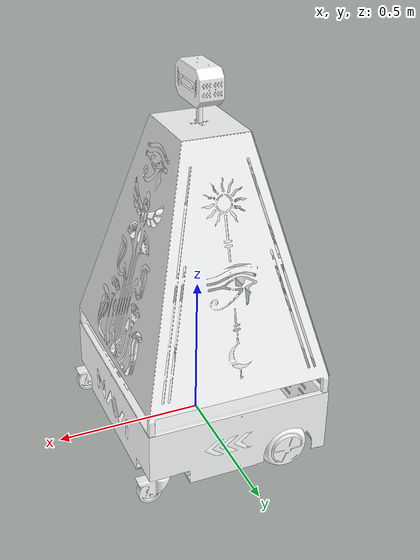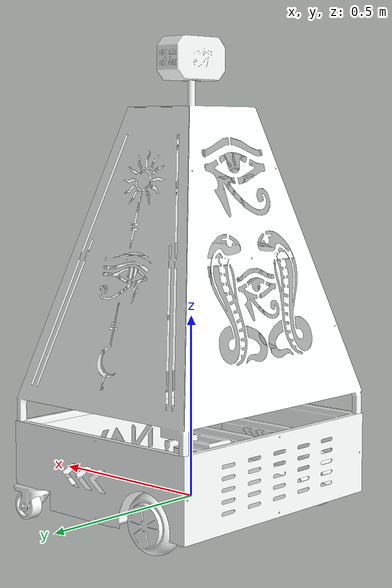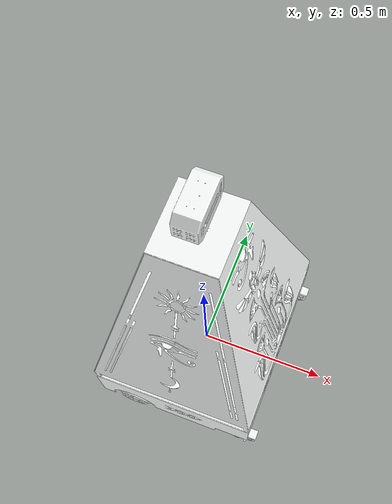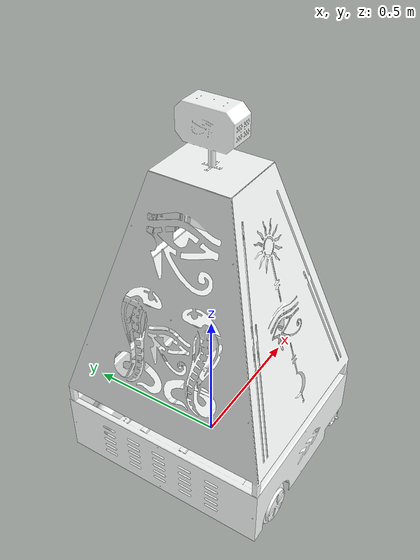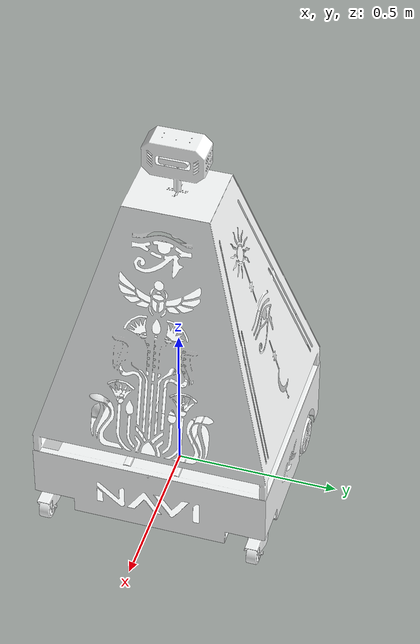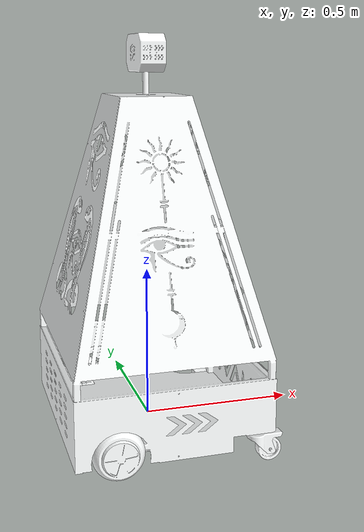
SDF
<sdf version='1.11'>
  <model name='Assem1'>
    <link name='base_link'>
      <inertial>
        <pose>0.0040303351550426041 -0.00016075430195749689 0.37410347715765341 0 0 0</pose>
        <mass>7.6705740138792979</mass>
        <inertia>
          <ixx>0.31652355109864122</ixx>
          <ixy>1.8967872329956341e-07</ixy>
          <ixz>-0.00116679389339272</ixz>
          <iyy>0.28127684860822949</iyy>
          <iyz>-4.5212037427513583e-05</iyz>
          <izz>0.2414859908537739</izz>
        </inertia>
      </inertial>
      <collision name='base_link_collision'>
        <pose>0 0 0 0 0 0</pose>
        <geometry>
          <mesh>
            <scale>1 1 1</scale>
            <uri>model://Assem1/meshes/base_link.STL</uri>
          </mesh>
        </geometry>
      </collision>
      <visual name='base_link_visual'>
        <pose>0 0 0 0 0 0</pose>
        <geometry>
          <mesh>
            <scale>1 1 1</scale>
            <uri>model://Assem1/meshes/base_link.STL</uri>
          </mesh>
        </geometry>
        <material>
          <diffuse>0.990196109 1 1 1</diffuse>
          <ambient>0.990196109 1 1 1</ambient>
        </material>
      </visual>
      <sensor name="tb3_imu" type="imu">
        <always_on>true</always_on>
        <update_rate>100</update_rate>
        <topic>imu</topic>
        <imu>
          <angular_velocity>
            <x><noise type="gaussian"><mean>0.0</mean><stddev>2e-4</stddev></noise></x>
            <y><noise type="gaussian"><mean>0.0</mean><stddev>2e-4</stddev></noise></y>
            <z><noise type="gaussian"><mean>0.0</mean><stddev>2e-4</stddev></noise></z>
          </angular_velocity>
          <linear_acceleration>
            <x><noise type="gaussian"><mean>0.0</mean><stddev>1.7e-2</stddev></noise></x>
            <y><noise type="gaussian"><mean>0.0</mean><stddev>1.7e-2</stddev></noise></y>
            <z><noise type="gaussian"><mean>0.0</mean><stddev>1.7e-2</stddev></noise></z>
          </linear_acceleration>
        </imu>
      </sensor>
    </link>
    <joint name='joint_1' type='revolute'>
      <pose relative_to='base_link'>0.26300000000004098 0.327500000000013 0 1.5707963267949003 -1.6213662157696211e-19 0.010889578205252298</pose>
      <parent>base_link</parent>
      <child>horizontal_rot1</child>
      <axis>
        <xyz>0 -1 0</xyz>
        <limit>
          <effort>300</effort>
          <velocity>3</velocity>
          <lower>-inf</lower>
          <upper>inf</upper>
        </limit>
        <dynamics>
          <damping>0.2</damping>
          <friction>0.05</friction>
          <spring_reference>0</spring_reference>
          <spring_stiffness>0</spring_stiffness>
        </dynamics>
      </axis>
    </joint>
    <link name='horizontal_rot1'>
      <pose relative_to='joint_1'>0 0 0 0 0 0</pose>
      <inertial>
        <pose>0.0264208443635311 0.0124915891690655 -0.000107994476847839 0 0 0</pose>
        <mass>0.0162856480579259</mass>
        <inertia>
          <ixx>1.00290661257103e-05</ixx>
          <ixy>1.0961595985375701e-06</ixy>
          <ixz>-3.7842637186911799e-08</ixz>
          <iyy>1.49482083733998e-05</iyy>
          <iyz>1.13941184793553e-08</iyz>
          <izz>1.35771578342545e-05</izz>
        </inertia>
      </inertial>
      <collision name='horizontal_rot1_collision'>
        <pose>0 0 0 0 0 0</pose>
        <geometry>
          <mesh>
            <scale>1 1 1</scale>
            <uri>model://Assem1/meshes/horizontal_rot1.STL</uri>
          </mesh>
        </geometry>
      </collision>
      <visual name='horizontal_rot1_visual'>
        <pose>0 0 0 0 0 0</pose>
        <geometry>
          <mesh>
            <scale>1 1 1</scale>
            <uri>model://Assem1/meshes/horizontal_rot1.STL</uri>
          </mesh>
        </geometry>
        <material>
          <diffuse>0.990196109 1 1 1</diffuse>
          <ambient>0.990196109 1 1 1</ambient>
        </material>
      </visual>
    </link>
    <joint name='joint_2' type='revolute'>
      <pose relative_to='horizontal_rot1'>0.039997628365157099 -0.0154991056418489 0.00043557451947506798 -0.0032925109758439402 0.00050965843372353947 0.30714849802921002</pose>
      <parent>horizontal_rot1</parent>
      <child>vertical_rot1</child>
      <axis>
        <xyz>-0.0108893629868767 0 0.99994070912916599</xyz>
        <limit>
          <effort>300</effort>
          <velocity>3</velocity>
          <lower>-inf</lower>
          <upper>inf</upper>
        </limit>
        <dynamics>
          <damping>0.2</damping>
          <friction>0.05</friction>
          <spring_reference>0</spring_reference>
          <spring_stiffness>0</spring_stiffness>
        </dynamics>
      </axis>
    </joint>
    <link name='vertical_rot1'>
      <pose relative_to='joint_2'>0 0 0 0 0 0</pose>
      <inertial>
        <pose>2.48476485886773e-07 6.2517794274796798e-09 -2.2816922693014201e-05 0 0 0</pose>
        <mass>0.081518779724096199</mass>
        <inertia>
          <ixx>4.1396699447279997e-05</ixx>
          <ixy>-3.24848216503477e-10</ixy>
          <ixz>-3.3088832034249599e-07</ixz>
          <iyy>4.1396725695037701e-05</iyy>
          <iyz>-2.8171920693807901e-12</iyz>
          <izz>7.1777674313114299e-05</izz>
        </inertia>
      </inertial>
      <collision name='vertical_rot1_collision'>
        <pose>0 0 0 0 0 0</pose>
        <geometry>
          <mesh>
            <scale>1 1 1</scale>
            <uri>model://Assem1/meshes/vertical_rot1.STL</uri>
          </mesh>
        </geometry>
      </collision>
      <visual name='vertical_rot1_visual'>
        <pose>0 0 0 0 0 0</pose>
        <geometry>
          <mesh>
            <scale>1 1 1</scale>
            <uri>model://Assem1/meshes/vertical_rot1.STL</uri>
          </mesh>
        </geometry>
        <material>
          <diffuse>0.990196109 1 1 1</diffuse>
          <ambient>0.990196109 1 1 1</ambient>
        </material>
      </visual>
    </link>
    <joint name='joint_3' type='revolute'>
      <pose relative_to='base_link'>0.26300000000003898 -0.32749999999998902 0 1.5707963267949003 -1.6213662157696211e-19 0.010889578205252298</pose>
      <parent>base_link</parent>
      <child>horizontal_rot2</child>
      <axis>
        <xyz>0 -1 0</xyz>
        <limit>
          <effort>300</effort>
          <velocity>3</velocity>
          <lower>-inf</lower>
          <upper>inf</upper>
        </limit>
        <dynamics>
          <damping>0.2</damping>
          <friction>0.05</friction>
          <spring_reference>0</spring_reference>
          <spring_stiffness>0</spring_stiffness>
        </dynamics>
      </axis>
    </joint>
    <link name='horizontal_rot2'>
      <pose relative_to='joint_3'>0 0 0 0 0 0</pose>
      <inertial>
        <pose>0.026420844160457799 0.012491589505039801 -0.00010799447906451 0 0 0</pose>
        <mass>0.016285648057930702</mass>
        <inertia>
          <ixx>1.00290643483525e-05</ixx>
          <ixy>1.0961577765657701e-06</ixy>
          <ixz>-3.7842697781914301e-08</ixz>
          <iyy>1.49482101518738e-05</iyy>
          <iyz>1.13941742785996e-08</iyz>
          <izz>1.3577157833149999e-05</izz>
        </inertia>
      </inertial>
      <collision name='horizontal_rot2_collision'>
        <pose>0 0 0 0 0 0</pose>
        <geometry>
          <mesh>
            <scale>1 1 1</scale>
            <uri>model://Assem1/meshes/horizontal_rot2.STL</uri>
          </mesh>
        </geometry>
      </collision>
      <visual name='horizontal_rot2_visual'>
        <pose>0 0 0 0 0 0</pose>
        <geometry>
          <mesh>
            <scale>1 1 1</scale>
            <uri>model://Assem1/meshes/horizontal_rot2.STL</uri>
          </mesh>
        </geometry>
        <material>
          <diffuse>0.990196109 1 1 1</diffuse>
          <ambient>0.990196109 1 1 1</ambient>
        </material>
      </visual>
    </link>
    <joint name='joint_4' type='revolute'>
      <pose relative_to='horizontal_rot2'>0.039997628365166599 -0.0154991056418602 0.00043557451947506798 0.010553279541266796 0.013578060943540199 -1.8201947101115099</pose>
      <parent>horizontal_rot2</parent>
      <child>vertical_rot2</child>
      <axis>
        <xyz>-0.0108893629868838 0 0.99994070912916599</xyz>
        <limit>
          <effort>300</effort>
          <velocity>3</velocity>
          <lower>-inf</lower>
          <upper>inf</upper>
        </limit>
        <dynamics>
          <damping>0.2</damping>
          <friction>0.05</friction>
          <spring_reference>0</spring_reference>
          <spring_stiffness>0</spring_stiffness>
        </dynamics>
      </axis>
    </joint>
    <link name='vertical_rot2'>
      <pose relative_to='joint_4'>0 0 0 0 0 0</pose>
      <inertial>
        <pose>2.4847648605330598e-07 6.2517793164573699e-09 -2.28169226976771e-05 0 0 0</pose>
        <mass>0.081518779724094506</mass>
        <inertia>
          <ixx>4.1396699447278702e-05</ixx>
          <ixy>-3.2484821665763699e-10</ixy>
          <ixz>-3.30888320342634e-07</ixz>
          <iyy>4.1396725695036603e-05</iyy>
          <iyz>-2.8171912935449301e-12</iyz>
          <izz>7.1777674313112496e-05</izz>
        </inertia>
      </inertial>
      <collision name='vertical_rot2_collision'>
        <pose>0 0 0 0 0 0</pose>
        <geometry>
          <mesh>
            <scale>1 1 1</scale>
            <uri>model://Assem1/meshes/vertical_rot2.STL</uri>
          </mesh>
        </geometry>
      </collision>
      <visual name='vertical_rot2_visual'>
        <pose>0 0 0 0 0 0</pose>
        <geometry>
          <mesh>
            <scale>1 1 1</scale>
            <uri>model://Assem1/meshes/vertical_rot2.STL</uri>
          </mesh>
        </geometry>
        <material>
          <diffuse>0.990196109 1 1 1</diffuse>
          <ambient>0.990196109 1 1 1</ambient>
        </material>
      </visual>
    </link>
    <joint name='joint_5' type='revolute'>
      <pose relative_to='base_link'>-0.175000000000021 0.24250000000000499 0.024499999999998599 -0.031310066162912285 6.7467392033564575e-19 1.5707963267949003</pose>
      <parent>base_link</parent>
      <child>big_wheel1</child>
      <axis>
        <xyz>1 0 0</xyz>
        <limit>
          <effort>300</effort>
          <velocity>3</velocity>
          <lower>-inf</lower>
          <upper>inf</upper>
        </limit>
        <dynamics>
          <spring_reference>0</spring_reference>
          <spring_stiffness>0</spring_stiffness>
        </dynamics>
      </axis>
    </joint>
    <link name='big_wheel1'>
      <pose relative_to='joint_5'>0 0 0 0 0 0</pose>
      <inertial>
        <pose>0.080130010416042702 1.17034645308323e-08 -5.9394429031689498e-06 0 0 0</pose>
        <mass>1.3103889578274801</mass>
        <inertia>
          <ixx>0.00378342151421735</ixx>
          <ixy>-2.4545216818955e-09</ixy>
          <ixz>-4.6676855880254699e-07</ixz>
          <iyy>0.00241866329287584</iyy>
          <iyz>-9.1087897044917601e-14</iyz>
          <izz>0.0024186884286251801</izz>
        </inertia>
      </inertial>
      <collision name='big_wheel1_collision'>
        <pose>0 0 0 0 0 0</pose>
        <geometry>
          <mesh>
            <scale>1 1 1</scale>
            <uri>model://Assem1/meshes/big_wheel1.STL</uri>
          </mesh>
        </geometry>
      </collision>
      <visual name='big_wheel1_visual'>
        <pose>0 0 0 0 0 0</pose>
        <geometry>
          <mesh>
            <scale>1 1 1</scale>
            <uri>model://Assem1/meshes/big_wheel1.STL</uri>
          </mesh>
        </geometry>
        <material>
          <diffuse>0.990196109 1 1 1</diffuse>
          <ambient>0.990196109 1 1 1</ambient>
        </material>
      </visual>
    </link>
    <joint name='joint_6' type='revolute'>
      <pose relative_to='base_link'>-0.175000000000022 -0.242499999999995 0.024499999999999598 0.056959309469116003 -1.270297219812016e-18 -1.5707963267949003</pose>
      <parent>base_link</parent>
      <child>big_wheel2</child>
      <axis>
        <xyz>-1 0 0</xyz>
        <limit>
          <effort>300</effort>
          <velocity>3</velocity>
          <lower>-inf</lower>
          <upper>inf</upper>
        </limit>
        <dynamics>
          <spring_reference>0</spring_reference>
          <spring_stiffness>0</spring_stiffness>
        </dynamics>
      </axis>
    </joint>
    <link name='big_wheel2'>
      <pose relative_to='joint_6'>0 0 0 0 0 0</pose>
      <inertial>
        <pose>0.080130040838805303 7.2558851149651096e-09 -5.9394434626103302e-06 0 0 0</pose>
        <mass>1.31038883438627</mass>
        <inertia>
          <ixx>0.0037834238636955601</ixx>
          <ixy>-8.0750272964801099e-10</ixy>
          <ixz>-4.6676879558195098e-07</ixz>
          <iyy>0.0024186622093405998</iyy>
          <iyz>-5.64724048773835e-14</iyz>
          <izz>0.0024186873450900599</izz>
        </inertia>
      </inertial>
      <collision name='big_wheel2_collision'>
        <pose>0 0 0 0 0 0</pose>
        <geometry>
          <mesh>
            <scale>1 1 1</scale>
            <uri>model://Assem1/meshes/big_wheel2.STL</uri>
          </mesh>
        </geometry>
      </collision>
      <visual name='big_wheel2_visual'>
        <pose>0 0 0 0 0 0</pose>
        <geometry>
          <mesh>
            <scale>1 1 1</scale>
            <uri>model://Assem1/meshes/big_wheel2.STL</uri>
          </mesh>
        </geometry>
        <material>
          <diffuse>0.990196109 1 1 1</diffuse>
          <ambient>0.990196109 1 1 1</ambient>
        </material>
      </visual>
    </link>
    <link name="base_footprint"/>
    <joint name="base_joint" type="fixed">
      <parent>base_footprint</parent>
      <child>base_link</child>
      <pose relative_to="base_footprint">0 0 0 0 0 0</pose>
    </joint>
    <link name="camera">
      <pose relative_to="joint_7">0 0 0 0 0 0</pose>
      <inertial>
        <pose>0.0115561554755023 0.000011008713381111 -0.000135954325541032 0 0 0</pose>
        <mass>0.0398923950503806</mass>
        <inertia>
          <ixx>2.63413640635645E-05</ixx>
          <ixy>-6.62466921778793E-09</ixy>
          <ixz>1.81971963264903E-08</ixz>
          <iyy>2.85032438177403E-06</iyy>
          <iyz>-1.55423031862008E-10</iyz>
          <izz>2.59721957527212E-05</izz>
        </inertia>
      </inertial>
      <visual name="camera_visual">
        <pose>0 0 0 0 0 0</pose>
        <geometry>
          <mesh>
            <scale>1 1 1</scale>
            <uri>model://Assem1/meshes/camera.STL</uri>
          </mesh>
        </geometry>
        <material>
          <diffuse>0.990196109 1 1 1</diffuse>
          <ambient>0.990196109 1 1 1</ambient>
        </material>
      </visual>
      <sensor name="d435i_rgb" type="camera">
        <always_on>true</always_on>
        <visualize>false</visualize>
        <update_rate>15</update_rate>
        <topic>camera/image_raw</topic>
        <gz_frame_id>camera</gz_frame_id>
        <camera name="d435i_color">
          <camera_info_topic>camera/camera_info</camera_info_topic>
          <horizontal_fov>1.2113</horizontal_fov>
          <image>
            <width>640</width>
            <height>480</height>
            <format>R8G8B8</format>
          </image>
          <clip>
            <near>0.02</near>
            <far>300</far>
          </clip>
          <noise>
            <type>gaussian</type>
            <mean>0.0</mean>
            <stddev>0.007</stddev>
          </noise>
        </camera>
      </sensor>
      <sensor name="d435i_depth" type="depth_camera">
        <always_on>true</always_on>
        <visualize>false</visualize>
        <update_rate>15</update_rate>
        <topic>camera/depth_image</topic>
        <gz_frame_id>camera</gz_frame_id>
        <camera name="d435i_depth">
          <horizontal_fov>1.5184</horizontal_fov>
          <image>
            <width>640</width>
            <height>480</height>
            <format>R_FLOAT32</format>
          </image>
          <clip>
            <near>0.1</near>
            <far>10.0</far>
          </clip>
        </camera>
      </sensor>
    </link>
    <joint name="joint_7" type="fixed">
      <parent>base_link</parent>
      <child>camera</child>
      <pose relative_to="base_link">0.018 0.0000274 1.1908 0 0 0</pose>
    </joint>
    <link name="lidar">
      <pose relative_to="joint_8">0 0 0 0 0 0</pose>
      <inertial>
        <pose>0.0135567743230772 -0.00026272003152461 0.0021348835502677 0 0 0</pose>
        <mass>0.0730842405077276</mass>
        <inertia>
          <ixx>1.95788122710189E-05</ixx>
          <ixy>-6.2493554728148E-08</ixy>
          <ixz>-4.28327018310629E-07</ixz>
          <iyy>2.41277945490076E-05</iyy>
          <iyz>1.34681573167481E-08</iyz>
          <izz>4.14190887972257E-05</izz>
        </inertia>
      </inertial>
      <visual name="lidar_visual">
        <pose>0 0 0 0 0 0</pose>
        <geometry>
          <mesh>
            <scale>1 1 1</scale>
            <uri>model://Assem1/meshes/lidar.STL</uri>
          </mesh>
        </geometry>
        <material>
          <diffuse>0.990196109 1 1 1</diffuse>
          <ambient>0.990196109 1 1 1</ambient>
        </material>
      </visual>
      <sensor name="a1m8_lidar" type="gpu_lidar">
        <always_on>true</always_on>
        <visualize>false</visualize>
        <update_rate>10</update_rate>
        <topic>scan</topic>
        <gz_frame_id>lidar</gz_frame_id>
        <lidar>
          <scan>
            <horizontal>
              <samples>360</samples>
              <resolution>1.0</resolution>
              <min_angle>0.0</min_angle>
              <max_angle>6.28319</max_angle>
            </horizontal>
          </scan>
          <range>
            <min>0.4975</min>
            <max>12.0</max>
            <resolution>0.015</resolution>
          </range>
          <noise>
            <type>gaussian</type>
            <mean>0.0</mean>
            <stddev>0.01</stddev>
          </noise>
        </lidar>
      </sensor>
    </link>
    <joint name="joint_8" type="fixed">
      <parent>base_link</parent>
      <child>lidar</child>
      <pose relative_to="base_link">-0.015 0 0.2476 0 0 0</pose>
    </joint>
    <plugin filename="gz-sim-diff-drive-system" name="gz::sim::systems::DiffDrive">
      <left_joint>joint_5</left_joint>
      <right_joint>joint_6</right_joint>
      <wheel_separation>0.485</wheel_separation>
      <wheel_radius>0.081</wheel_radius>
      <max_linear_acceleration>1.0</max_linear_acceleration>
      <topic>cmd_vel</topic>
      <odom_topic>odom</odom_topic>
      <frame_id>odom</frame_id>
      <child_frame_id>base_footprint</child_frame_id>
      <odom_publisher_frequency>30</odom_publisher_frequency>
      <tf_topic>/tf</tf_topic>
    </plugin>
    <plugin filename="gz-sim-joint-state-publisher-system" name="gz::sim::systems::JointStatePublisher">
      <topic>joint_states</topic>
      <joint_name>joint_1</joint_name>
      <joint_name>joint_2</joint_name>
      <joint_name>joint_3</joint_name>
      <joint_name>joint_4</joint_name>
      <joint_name>joint_5</joint_name>
      <joint_name>joint_6</joint_name>
    </plugin>
  </model>
</sdf>
